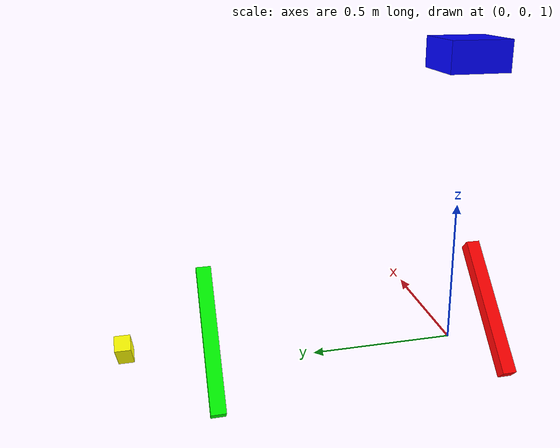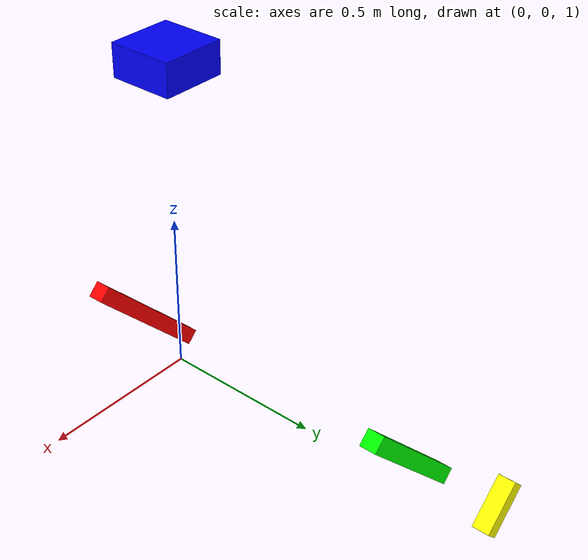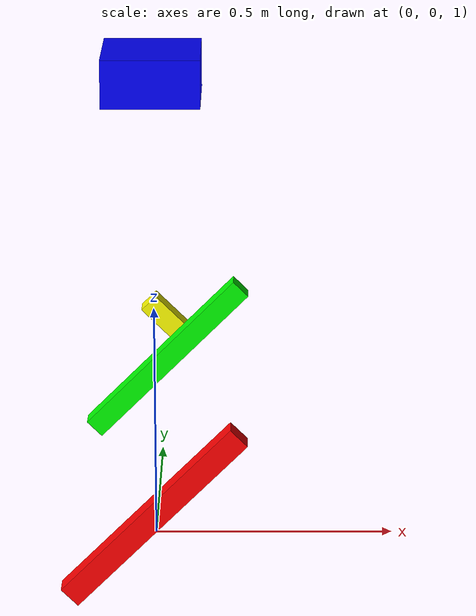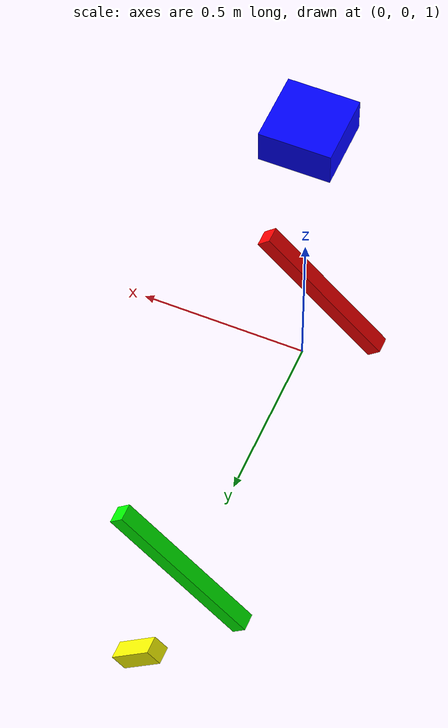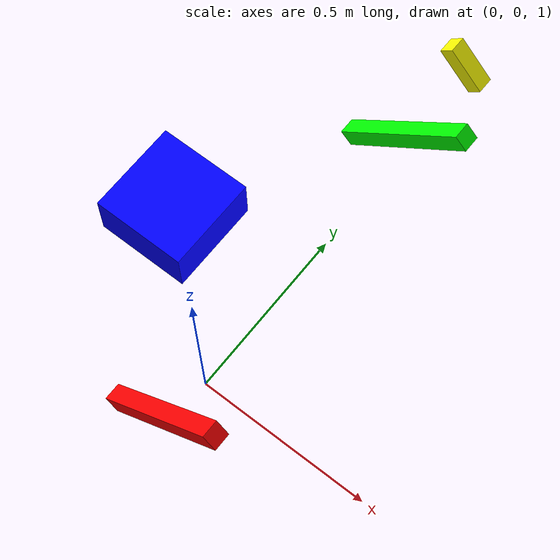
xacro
<robot xmlns:xacro="http://ros.org/wiki/xacro" name="biped_leg">
  <!-- Root Link -->
  <link name="world"/>

  <!-- Base Link -->
  <link name="base_link">
    <visual>
      <origin xyz="0 0 1" rpy="0 0 0"/>
      <geometry>
        <box size="0.2 0.2 0.1"/>
      </geometry>
      <material name="blue">
        <color rgba="0 0 1 1"/>
      </material>
    </visual>
  </link>

  <!-- Fixed Joint to World -->
  <joint name="world_to_base" type="fixed">
    <parent link="world"/>
    <child link="base_link"/>
    <origin xyz="0 0 1" rpy="0 0 0"/>
  </joint>

  <!-- Thigh -->
  <link name="thigh">
    <visual>
      <origin xyz="0 0 0.25" rpy="0 0 0"/>
      <geometry>
        <box size="0.05 0.5 0.05"/>
      </geometry>
      <material name="red">
        <color rgba="1 0 0 1"/>
      </material>
    </visual>
  </link>

  <!-- Hip Joint -->
  <joint name="hip_joint" type="revolute">
    <parent link="base_link"/>
    <child link="thigh"/>
    <origin xyz="0 .1 .1" rpy="1.57 0.785 0"/>
    <axis xyz="0 1 0"/>
    <limit effort="10" velocity="2" lower="-1.57" upper="1.57"/>
  </joint>

  <!-- Shin -->
  <link name="shin">
    <visual>
      <origin xyz="0 0 -0.25" rpy="0 0 0"/>
      <geometry>
        <box size="0.05 0.5 0.05"/>
      </geometry>
      <material name="green">
        <color rgba="0 1 0 1"/>
      </material>
    </visual>
  </link>

  <!-- Knee Joint -->
  <joint name="knee_joint" type="revolute">
    <parent link="thigh"/>
    <child link="shin"/>
    <origin xyz="0 0 -0.5" rpy="0 0 0"/>
    <axis xyz="0 1 0"/>
    <limit effort="10" velocity="2" lower="0" upper="2.5"/>
  </joint>

  <!-- Foot -->
  <link name="foot">
    <visual>
      <origin xyz="0 0 -0.025" rpy="0 0 0"/>
      <geometry>
        <box size="0.15 0.05 0.05"/>
      </geometry>
      <material name="yellow">
        <color rgba="1 1 0 1"/>
      </material>
    </visual>
  </link>

  <!-- Ankle Joint -->
  <joint name="ankle_joint" type="revolute">
    <parent link="shin"/>
    <child link="foot"/>
    <origin xyz="0 0 -0.5" rpy="0 0 0"/>
    <axis xyz="1 0 0"/>
    <limit effort="10" velocity="2" lower="-1.57" upper="1.57"/>
  </joint>
</robot>
